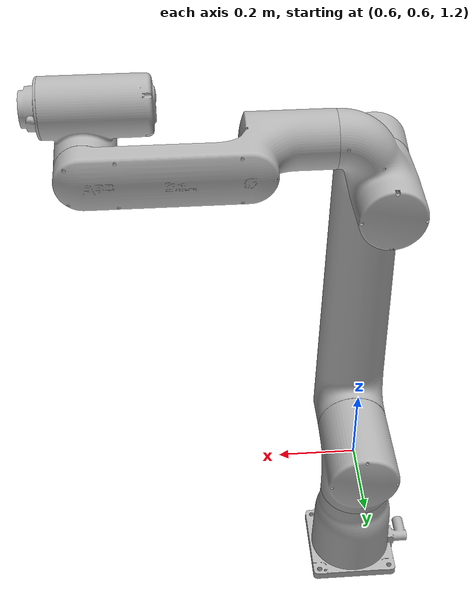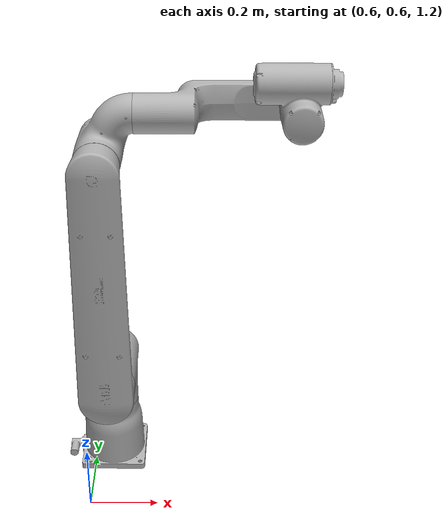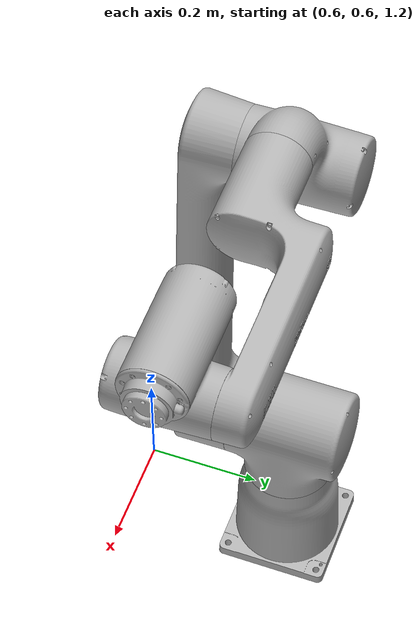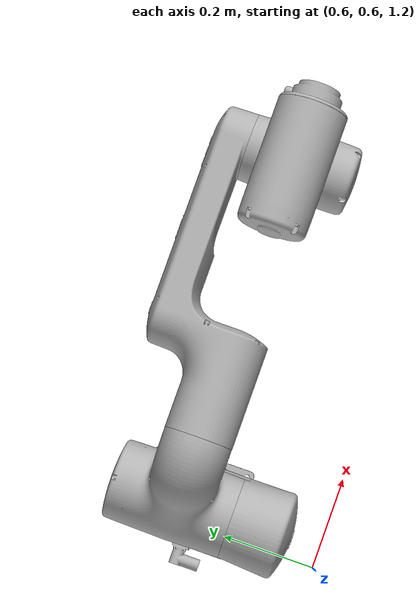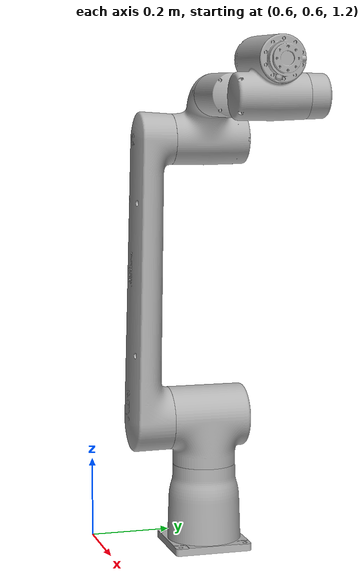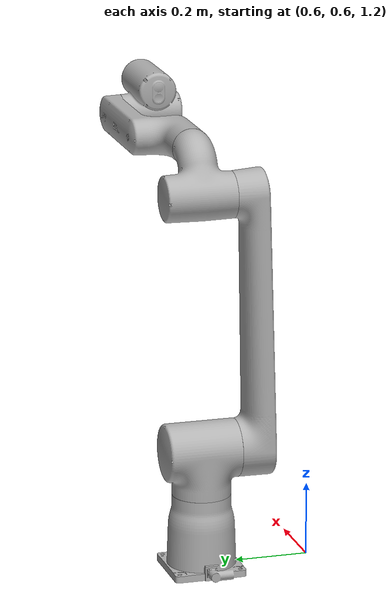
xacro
<?xml version="1.0" ?>
<robot name="CRB15000_12-127" xmlns:xacro="http://www.ros.org/wiki/xacro">

<xacro:include filename="$(find CRB15000_12-127_description)/urdf/materials.xacro" />
<xacro:include filename="$(find CRB15000_12-127_description)/urdf/CRB15000_12-127.trans" />
<xacro:include filename="$(find CRB15000_12-127_description)/urdf/CRB15000_12-127.gazebo" />
<link name="base_link">
  <inertial>
    <origin xyz="0.6499026049481219 0.8820630101343084 1.2667733856659833" rpy="0 0 0"/>
    <mass value="43.32183458222497"/>
    <inertia ixx="0.254824" iyy="0.26074" izz="0.191484" ixy="-0.000567" iyz="-0.000372" ixz="-0.003894"/>
  </inertial>
  <visual>
    <origin xyz="0 0 0" rpy="0 0 0"/>
    <geometry>
      <mesh filename="package://CRB15000_12-127_description/meshes/base_link.stl" scale="0.001 0.001 0.001"/>
    </geometry>
    <material name="silver"/>
  </visual>
  <collision>
    <origin xyz="0 0 0" rpy="0 0 0"/>
    <geometry>
      <mesh filename="package://CRB15000_12-127_description/meshes/base_link.stl" scale="0.001 0.001 0.001"/>
    </geometry>
  </collision>
</link>

<link name="link_1_1">
  <inertial>
    <origin xyz="-2.938946441766177e-08 0.0044105362189267305 0.10253435639427089" rpy="0 0 0"/>
    <mass value="41.02561837016391"/>
    <inertia ixx="0.236925" iyy="0.184428" izz="0.192336" ixy="-1e-06" iyz="-0.003705" ixz="0.0"/>
  </inertial>
  <visual>
    <origin xyz="-0.651068 -0.882174 -1.382204" rpy="0 0 0"/>
    <geometry>
      <mesh filename="package://CRB15000_12-127_description/meshes/link_1_1.stl" scale="0.001 0.001 0.001"/>
    </geometry>
    <material name="silver"/>
  </visual>
  <collision>
    <origin xyz="-0.651068 -0.882174 -1.382204" rpy="0 0 0"/>
    <geometry>
      <mesh filename="package://CRB15000_12-127_description/meshes/link_1_1.stl" scale="0.001 0.001 0.001"/>
    </geometry>
  </collision>
</link>

<link name="link_2_1">
  <inertial>
    <origin xyz="3.741413248103953e-07 -0.054321122191886784 0.31994018861855444" rpy="0 0 0"/>
    <mass value="70.93334568132663"/>
    <inertia ixx="4.564659" iyy="4.624729" izz="0.149362" ixy="0.0" iyz="-0.067788" ixz="-2e-06"/>
  </inertial>
  <visual>
    <origin xyz="-0.650818 -0.787024 -1.505304" rpy="0 0 0"/>
    <geometry>
      <mesh filename="package://CRB15000_12-127_description/meshes/link_2_1.stl" scale="0.001 0.001 0.001"/>
    </geometry>
    <material name="silver"/>
  </visual>
  <collision>
    <origin xyz="-0.650818 -0.787024 -1.505304" rpy="0 0 0"/>
    <geometry>
      <mesh filename="package://CRB15000_12-127_description/meshes/link_2_1.stl" scale="0.001 0.001 0.001"/>
    </geometry>
  </collision>
</link>

<link name="link_3_1">
  <inertial>
    <origin xyz="0.012899518260057863 0.09273722024727038 0.024906919150265328" rpy="0 0 0"/>
    <mass value="26.38179204175825"/>
    <inertia ixx="0.135785" iyy="0.109627" izz="0.102204" ixy="0.002633" iyz="0.005085" ixz="-0.024959"/>
  </inertial>
  <visual>
    <origin xyz="-0.650818 -0.796874 -2.212273" rpy="0 0 0"/>
    <geometry>
      <mesh filename="package://CRB15000_12-127_description/meshes/link_3_1.stl" scale="0.001 0.001 0.001"/>
    </geometry>
    <material name="silver"/>
  </visual>
  <collision>
    <origin xyz="-0.650818 -0.796874 -2.212273" rpy="0 0 0"/>
    <geometry>
      <mesh filename="package://CRB15000_12-127_description/meshes/link_3_1.stl" scale="0.001 0.001 0.001"/>
    </geometry>
  </collision>
</link>

<link name="link_4_1">
  <inertial>
    <origin xyz="0.19839385789646258 0.05675474228411992 4.579617467470598e-07" rpy="0 0 0"/>
    <mass value="27.702603279655857"/>
    <inertia ixx="0.097388" iyy="0.497655" izz="0.55515" ixy="-0.13931" iyz="1e-06" ixz="5e-06"/>
  </inertial>
  <visual>
    <origin xyz="-0.746818 -0.881874 -2.322273" rpy="0 0 0"/>
    <geometry>
      <mesh filename="package://CRB15000_12-127_description/meshes/link_4_1.stl" scale="0.001 0.001 0.001"/>
    </geometry>
    <material name="silver"/>
  </visual>
  <collision>
    <origin xyz="-0.746818 -0.881874 -2.322273" rpy="0 0 0"/>
    <geometry>
      <mesh filename="package://CRB15000_12-127_description/meshes/link_4_1.stl" scale="0.001 0.001 0.001"/>
    </geometry>
  </collision>
</link>

<link name="link_5_1">
  <inertial>
    <origin xyz="-0.014714517898320345 -0.07856643556852694 0.04275434954511015" rpy="0 0 0"/>
    <mass value="23.637515690396576"/>
    <inertia ixx="0.08996" iyy="0.106457" izz="0.085163" ixy="0.001414" iyz="-0.004125" ixz="0.012972"/>
  </inertial>
  <visual>
    <origin xyz="-1.183701 -0.957374 -2.322273" rpy="0 0 0"/>
    <geometry>
      <mesh filename="package://CRB15000_12-127_description/meshes/link_5_1.stl" scale="0.001 0.001 0.001"/>
    </geometry>
    <material name="silver"/>
  </visual>
  <collision>
    <origin xyz="-1.183701 -0.957374 -2.322273" rpy="0 0 0"/>
    <geometry>
      <mesh filename="package://CRB15000_12-127_description/meshes/link_5_1.stl" scale="0.001 0.001 0.001"/>
    </geometry>
  </collision>
</link>

<link name="link_6_1">
  <inertial>
    <origin xyz="0.012751001319583066 0.00024007149782090398 -0.0003419668957884703" rpy="0 0 0"/>
    <mass value="1.1500357263477234"/>
    <inertia ixx="0.001012" iyy="0.000597" izz="0.000601" ixy="-1e-06" iyz="-5e-06" ixz="1e-06"/>
  </inertial>
  <visual>
    <origin xyz="-1.251701 -0.882874 -2.402273" rpy="0 0 0"/>
    <geometry>
      <mesh filename="package://CRB15000_12-127_description/meshes/link_6_1.stl" scale="0.001 0.001 0.001"/>
    </geometry>
    <material name="silver"/>
  </visual>
  <collision>
    <origin xyz="-1.251701 -0.882874 -2.402273" rpy="0 0 0"/>
    <geometry>
      <mesh filename="package://CRB15000_12-127_description/meshes/link_6_1.stl" scale="0.001 0.001 0.001"/>
    </geometry>
  </collision>
</link>

<joint name="j1" type="continuous">
  <origin xyz="0.651068 0.882174 1.382204" rpy="0 0 0"/>
  <parent link="base_link"/>
  <child link="link_1_1"/>
  <axis xyz="0.0 -0.0 1.0"/>
</joint>

<joint name="j2" type="continuous">
  <origin xyz="-0.00025 -0.09515 0.1231" rpy="0 0 0"/>
  <parent link="link_1_1"/>
  <child link="link_2_1"/>
  <axis xyz="0.0 -1.0 0.0"/>
</joint>

<joint name="j3" type="continuous">
  <origin xyz="0.0 0.00985 0.706969" rpy="0 0 0"/>
  <parent link="link_2_1"/>
  <child link="link_3_1"/>
  <axis xyz="-0.0 1.0 -0.0"/>
</joint>

<joint name="j4" type="continuous">
  <origin xyz="0.096 0.085 0.11" rpy="0 0 0"/>
  <parent link="link_3_1"/>
  <child link="link_4_1"/>
  <axis xyz="1.0 -0.0 0.0"/>
</joint>

<joint name="j5" type="continuous">
  <origin xyz="0.436883 0.0755 0.0" rpy="0 0 0"/>
  <parent link="link_4_1"/>
  <child link="link_5_1"/>
  <axis xyz="0.0 -1.0 0.0"/>
</joint>

<joint name="j6" type="continuous">
  <origin xyz="0.068 -0.0745 0.08" rpy="0 0 0"/>
  <parent link="link_5_1"/>
  <child link="link_6_1"/>
  <axis xyz="1.0 -0.0 0.0"/>
</joint>

</robot>

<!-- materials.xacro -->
<robot name="CRB15000_12-127" xmlns:xacro="http://www.ros.org/wiki/xacro" >

<material name="silver">
  <color rgba="0.700 0.700 0.700 1.000"/>
</material>

</robot>

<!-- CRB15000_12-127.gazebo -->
<robot name="CRB15000_12-127" xmlns:xacro="http://www.ros.org/wiki/xacro" >

<xacro:property name="body_color" value="Gazebo/Silver" />

<gazebo>
  <plugin name="control" filename="libgazebo_ros_control.so"/>
</gazebo>
<gazebo reference="base_link">
  <material>${body_color}</material>
  <mu1>0.2</mu1>
  <mu2>0.2</mu2>
  <selfCollide>true</selfCollide>
  <gravity>true</gravity>
</gazebo>

<gazebo reference="link_1_1">
  <material>${body_color}</material>
  <mu1>0.2</mu1>
  <mu2>0.2</mu2>
  <selfCollide>true</selfCollide>
</gazebo>

<gazebo reference="link_2_1">
  <material>${body_color}</material>
  <mu1>0.2</mu1>
  <mu2>0.2</mu2>
  <selfCollide>true</selfCollide>
</gazebo>

<gazebo reference="link_3_1">
  <material>${body_color}</material>
  <mu1>0.2</mu1>
  <mu2>0.2</mu2>
  <selfCollide>true</selfCollide>
</gazebo>

<gazebo reference="link_4_1">
  <material>${body_color}</material>
  <mu1>0.2</mu1>
  <mu2>0.2</mu2>
  <selfCollide>true</selfCollide>
</gazebo>

<gazebo reference="link_5_1">
  <material>${body_color}</material>
  <mu1>0.2</mu1>
  <mu2>0.2</mu2>
  <selfCollide>true</selfCollide>
</gazebo>

<gazebo reference="link_6_1">
  <material>${body_color}</material>
  <mu1>0.2</mu1>
  <mu2>0.2</mu2>
  <selfCollide>true</selfCollide>
</gazebo>

</robot>
